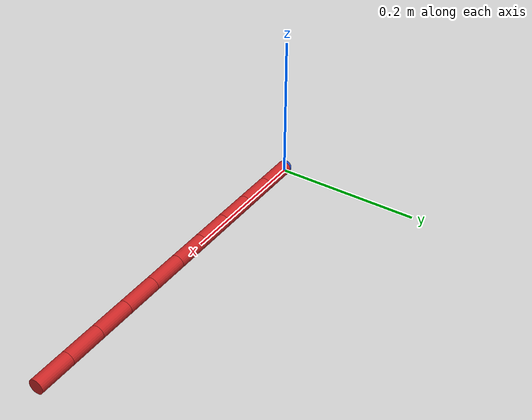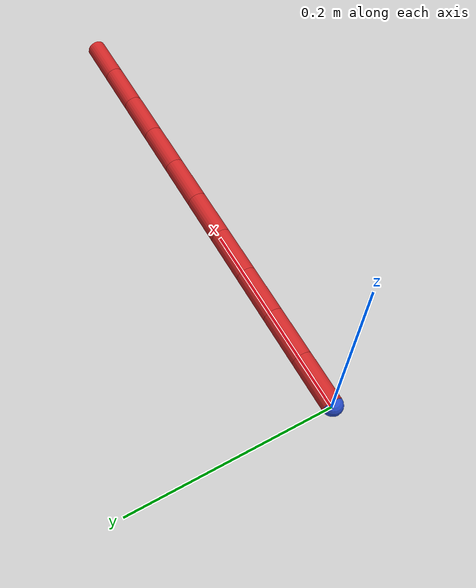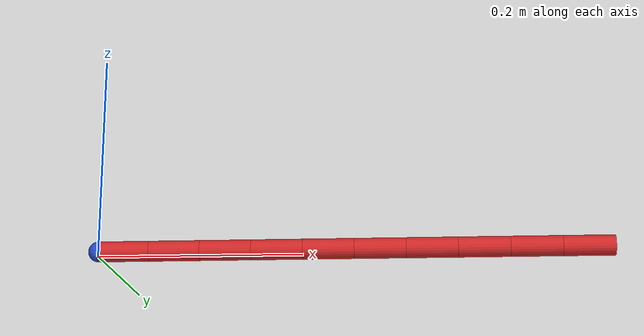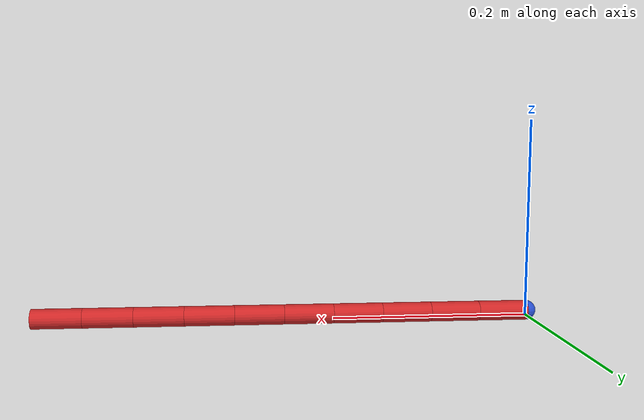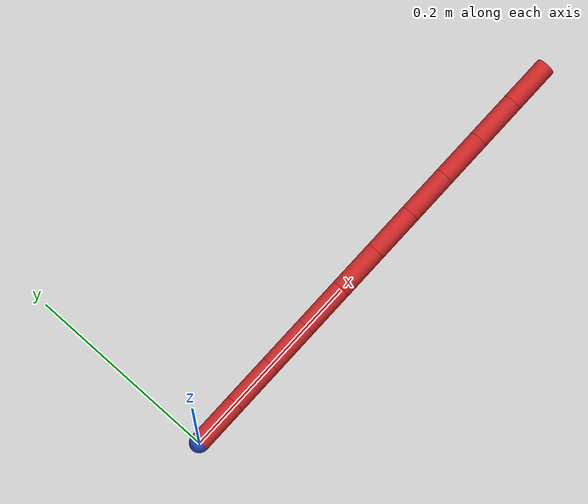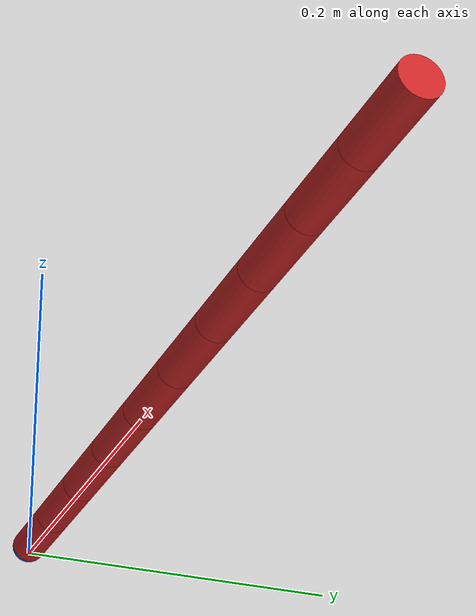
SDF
<sdf version="1.6">
    <model name="dragging_rope">
        <pose frame="">0 0 0.005 0 0 0</pose>

        <link name="rope_link_1">
        <pose frame="">0.025 0 0 3.14159 -1.57079 3.14159</pose>
        <inertial>
            <pose frame="">0 0 0 0 0 0</pose>
            <mass>0.01</mass>
            <inertia>
                <ixx>2.3333333333333336e-06</ixx>
                <ixy>0</ixy>
                <ixz>0</ixz>
                <iyy>2.3333333333333336e-06</iyy>
                <iyz>0</iyz>
                <izz>5.000000000000001e-07</izz>
            </inertia>
        </inertial>
        <collision name="link_1_collision">
            <pose frame="">0 0 0 0 0 0</pose>
            <geometry>
                <box>
                    <size>0.02 0.02 0.045000000000000005</size>
                </box>
            </geometry>
            <surface>
                <friction>
                    <ode>
                        <mu>0.10</mu>
                        <mu2>0.10</mu2>
                    </ode>
                </friction>
                <contact>
                    <ode>
                        <kp>1e15</kp>
                        <kd>1e13</kd>
                    </ode>
                </contact>
            </surface>
        </collision>

        <visual name="link_1_visual">
            <cast_shadows>0</cast_shadows>
            <pose frame="">0 0 0 0 0 0</pose>
            <geometry>
                <cylinder>
                    <length>0.05</length>
                    <radius>0.01</radius>
                </cylinder>
            </geometry>
            <material>
                <script>
                    <name>Gazebo/Red</name>
                    <uri>file://media/materials/scripts/gazebo.material</uri>
                </script>
            </material>
        </visual>
        <self_collide>1</self_collide>
        </link>

        <link name="rope_link_2">
        <pose frame="">0.07500000000000001 0 0 3.14159 -1.57079 3.14159</pose>
        <inertial>
            <pose frame="">0 0 0 0 0 0</pose>
            <mass>0.01</mass>
            <inertia>
                <ixx>2.3333333333333336e-06</ixx>
                <ixy>0</ixy>
                <ixz>0</ixz>
                <iyy>2.3333333333333336e-06</iyy>
                <iyz>0</iyz>
                <izz>5.000000000000001e-07</izz>
            </inertia>
        </inertial>
        <collision name="link_2_collision">
            <pose frame="">0 0 0 0 0 0</pose>
            <geometry>
                <box>
                    <size>0.02 0.02 0.045000000000000005</size>
                </box>
            </geometry>
            <surface>
                <friction>
                    <ode>
                        <mu>0.10</mu>
                        <mu2>0.10</mu2>
                    </ode>
                </friction>
                <contact>
                    <ode>
                        <kp>1e15</kp>
                        <kd>1e13</kd>
                    </ode>
                </contact>
            </surface>
        </collision>

        <visual name="link_2_visual">
            <cast_shadows>0</cast_shadows>
            <pose frame="">0 0 0 0 0 0</pose>
            <geometry>
                <cylinder>
                    <length>0.05</length>
                    <radius>0.01</radius>
                </cylinder>
            </geometry>
            <material>
                <script>
                    <name>Gazebo/Red</name>
                    <uri>file://media/materials/scripts/gazebo.material</uri>
                </script>
            </material>
        </visual>
        <self_collide>1</self_collide>
        </link>

        <link name="rope_link_3">
        <pose frame="">0.125 0 0 3.14159 -1.57079 3.14159</pose>
        <inertial>
            <pose frame="">0 0 0 0 0 0</pose>
            <mass>0.01</mass>
            <inertia>
                <ixx>2.3333333333333336e-06</ixx>
                <ixy>0</ixy>
                <ixz>0</ixz>
                <iyy>2.3333333333333336e-06</iyy>
                <iyz>0</iyz>
                <izz>5.000000000000001e-07</izz>
            </inertia>
        </inertial>
        <collision name="link_3_collision">
            <pose frame="">0 0 0 0 0 0</pose>
            <geometry>
                <box>
                    <size>0.02 0.02 0.045000000000000005</size>
                </box>
            </geometry>
            <surface>
                <friction>
                    <ode>
                        <mu>0.10</mu>
                        <mu2>0.10</mu2>
                    </ode>
                </friction>
                <contact>
                    <ode>
                        <kp>1e15</kp>
                        <kd>1e13</kd>
                    </ode>
                </contact>
            </surface>
        </collision>

        <visual name="link_3_visual">
            <cast_shadows>0</cast_shadows>
            <pose frame="">0 0 0 0 0 0</pose>
            <geometry>
                <cylinder>
                    <length>0.05</length>
                    <radius>0.01</radius>
                </cylinder>
            </geometry>
            <material>
                <script>
                    <name>Gazebo/Red</name>
                    <uri>file://media/materials/scripts/gazebo.material</uri>
                </script>
            </material>
        </visual>
        <self_collide>1</self_collide>
        </link>

        <link name="rope_link_4">
        <pose frame="">0.17500000000000002 0 0 3.14159 -1.57079 3.14159</pose>
        <inertial>
            <pose frame="">0 0 0 0 0 0</pose>
            <mass>0.01</mass>
            <inertia>
                <ixx>2.3333333333333336e-06</ixx>
                <ixy>0</ixy>
                <ixz>0</ixz>
                <iyy>2.3333333333333336e-06</iyy>
                <iyz>0</iyz>
                <izz>5.000000000000001e-07</izz>
            </inertia>
        </inertial>
        <collision name="link_4_collision">
            <pose frame="">0 0 0 0 0 0</pose>
            <geometry>
                <box>
                    <size>0.02 0.02 0.045000000000000005</size>
                </box>
            </geometry>
            <surface>
                <friction>
                    <ode>
                        <mu>0.10</mu>
                        <mu2>0.10</mu2>
                    </ode>
                </friction>
                <contact>
                    <ode>
                        <kp>1e15</kp>
                        <kd>1e13</kd>
                    </ode>
                </contact>
            </surface>
        </collision>

        <visual name="link_4_visual">
            <cast_shadows>0</cast_shadows>
            <pose frame="">0 0 0 0 0 0</pose>
            <geometry>
                <cylinder>
                    <length>0.05</length>
                    <radius>0.01</radius>
                </cylinder>
            </geometry>
            <material>
                <script>
                    <name>Gazebo/Red</name>
                    <uri>file://media/materials/scripts/gazebo.material</uri>
                </script>
            </material>
        </visual>
        <self_collide>1</self_collide>
        </link>

        <link name="rope_link_5">
        <pose frame="">0.225 0 0 3.14159 -1.57079 3.14159</pose>
        <inertial>
            <pose frame="">0 0 0 0 0 0</pose>
            <mass>0.01</mass>
            <inertia>
                <ixx>2.3333333333333336e-06</ixx>
                <ixy>0</ixy>
                <ixz>0</ixz>
                <iyy>2.3333333333333336e-06</iyy>
                <iyz>0</iyz>
                <izz>5.000000000000001e-07</izz>
            </inertia>
        </inertial>
        <collision name="link_5_collision">
            <pose frame="">0 0 0 0 0 0</pose>
            <geometry>
                <box>
                    <size>0.02 0.02 0.045000000000000005</size>
                </box>
            </geometry>
            <surface>
                <friction>
                    <ode>
                        <mu>0.10</mu>
                        <mu2>0.10</mu2>
                    </ode>
                </friction>
                <contact>
                    <ode>
                        <kp>1e15</kp>
                        <kd>1e13</kd>
                    </ode>
                </contact>
            </surface>
        </collision>

        <visual name="link_5_visual">
            <cast_shadows>0</cast_shadows>
            <pose frame="">0 0 0 0 0 0</pose>
            <geometry>
                <cylinder>
                    <length>0.05</length>
                    <radius>0.01</radius>
                </cylinder>
            </geometry>
            <material>
                <script>
                    <name>Gazebo/Red</name>
                    <uri>file://media/materials/scripts/gazebo.material</uri>
                </script>
            </material>
        </visual>
        <self_collide>1</self_collide>
        </link>

        <link name="rope_link_6">
        <pose frame="">0.275 0 0 3.14159 -1.57079 3.14159</pose>
        <inertial>
            <pose frame="">0 0 0 0 0 0</pose>
            <mass>0.01</mass>
            <inertia>
                <ixx>2.3333333333333336e-06</ixx>
                <ixy>0</ixy>
                <ixz>0</ixz>
                <iyy>2.3333333333333336e-06</iyy>
                <iyz>0</iyz>
                <izz>5.000000000000001e-07</izz>
            </inertia>
        </inertial>
        <collision name="link_6_collision">
            <pose frame="">0 0 0 0 0 0</pose>
            <geometry>
                <box>
                    <size>0.02 0.02 0.045000000000000005</size>
                </box>
            </geometry>
            <surface>
                <friction>
                    <ode>
                        <mu>0.10</mu>
                        <mu2>0.10</mu2>
                    </ode>
                </friction>
                <contact>
                    <ode>
                        <kp>1e15</kp>
                        <kd>1e13</kd>
                    </ode>
                </contact>
            </surface>
        </collision>

        <visual name="link_6_visual">
            <cast_shadows>0</cast_shadows>
            <pose frame="">0 0 0 0 0 0</pose>
            <geometry>
                <cylinder>
                    <length>0.05</length>
                    <radius>0.01</radius>
                </cylinder>
            </geometry>
            <material>
                <script>
                    <name>Gazebo/Red</name>
                    <uri>file://media/materials/scripts/gazebo.material</uri>
                </script>
            </material>
        </visual>
        <self_collide>1</self_collide>
        </link>

        <link name="rope_link_7">
        <pose frame="">0.32500000000000007 0 0 3.14159 -1.57079 3.14159</pose>
        <inertial>
            <pose frame="">0 0 0 0 0 0</pose>
            <mass>0.01</mass>
            <inertia>
                <ixx>2.3333333333333336e-06</ixx>
                <ixy>0</ixy>
                <ixz>0</ixz>
                <iyy>2.3333333333333336e-06</iyy>
                <iyz>0</iyz>
                <izz>5.000000000000001e-07</izz>
            </inertia>
        </inertial>
        <collision name="link_7_collision">
            <pose frame="">0 0 0 0 0 0</pose>
            <geometry>
                <box>
                    <size>0.02 0.02 0.045000000000000005</size>
                </box>
            </geometry>
            <surface>
                <friction>
                    <ode>
                        <mu>0.10</mu>
                        <mu2>0.10</mu2>
                    </ode>
                </friction>
                <contact>
                    <ode>
                        <kp>1e15</kp>
                        <kd>1e13</kd>
                    </ode>
                </contact>
            </surface>
        </collision>

        <visual name="link_7_visual">
            <cast_shadows>0</cast_shadows>
            <pose frame="">0 0 0 0 0 0</pose>
            <geometry>
                <cylinder>
                    <length>0.05</length>
                    <radius>0.01</radius>
                </cylinder>
            </geometry>
            <material>
                <script>
                    <name>Gazebo/Red</name>
                    <uri>file://media/materials/scripts/gazebo.material</uri>
                </script>
            </material>
        </visual>
        <self_collide>1</self_collide>
        </link>

        <link name="rope_link_8">
        <pose frame="">0.37500000000000006 0 0 3.14159 -1.57079 3.14159</pose>
        <inertial>
            <pose frame="">0 0 0 0 0 0</pose>
            <mass>0.01</mass>
            <inertia>
                <ixx>2.3333333333333336e-06</ixx>
                <ixy>0</ixy>
                <ixz>0</ixz>
                <iyy>2.3333333333333336e-06</iyy>
                <iyz>0</iyz>
                <izz>5.000000000000001e-07</izz>
            </inertia>
        </inertial>
        <collision name="link_8_collision">
            <pose frame="">0 0 0 0 0 0</pose>
            <geometry>
                <box>
                    <size>0.02 0.02 0.045000000000000005</size>
                </box>
            </geometry>
            <surface>
                <friction>
                    <ode>
                        <mu>0.10</mu>
                        <mu2>0.10</mu2>
                    </ode>
                </friction>
                <contact>
                    <ode>
                        <kp>1e15</kp>
                        <kd>1e13</kd>
                    </ode>
                </contact>
            </surface>
        </collision>

        <visual name="link_8_visual">
            <cast_shadows>0</cast_shadows>
            <pose frame="">0 0 0 0 0 0</pose>
            <geometry>
                <cylinder>
                    <length>0.05</length>
                    <radius>0.01</radius>
                </cylinder>
            </geometry>
            <material>
                <script>
                    <name>Gazebo/Red</name>
                    <uri>file://media/materials/scripts/gazebo.material</uri>
                </script>
            </material>
        </visual>
        <self_collide>1</self_collide>
        </link>

        <link name="rope_link_9">
        <pose frame="">0.42500000000000004 0 0 3.14159 -1.57079 3.14159</pose>
        <inertial>
            <pose frame="">0 0 0 0 0 0</pose>
            <mass>0.01</mass>
            <inertia>
                <ixx>2.3333333333333336e-06</ixx>
                <ixy>0</ixy>
                <ixz>0</ixz>
                <iyy>2.3333333333333336e-06</iyy>
                <iyz>0</iyz>
                <izz>5.000000000000001e-07</izz>
            </inertia>
        </inertial>
        <collision name="link_9_collision">
            <pose frame="">0 0 0 0 0 0</pose>
            <geometry>
                <box>
                    <size>0.02 0.02 0.045000000000000005</size>
                </box>
            </geometry>
            <surface>
                <friction>
                    <ode>
                        <mu>0.10</mu>
                        <mu2>0.10</mu2>
                    </ode>
                </friction>
                <contact>
                    <ode>
                        <kp>1e15</kp>
                        <kd>1e13</kd>
                    </ode>
                </contact>
            </surface>
        </collision>

        <visual name="link_9_visual">
            <cast_shadows>0</cast_shadows>
            <pose frame="">0 0 0 0 0 0</pose>
            <geometry>
                <cylinder>
                    <length>0.05</length>
                    <radius>0.01</radius>
                </cylinder>
            </geometry>
            <material>
                <script>
                    <name>Gazebo/Red</name>
                    <uri>file://media/materials/scripts/gazebo.material</uri>
                </script>
            </material>
        </visual>
        <self_collide>1</self_collide>
        </link>

        <link name="rope_link_10">
        <pose frame="">0.47500000000000003 0 0 3.14159 -1.57079 3.14159</pose>
        <inertial>
            <pose frame="">0 0 0 0 0 0</pose>
            <mass>0.01</mass>
            <inertia>
                <ixx>2.3333333333333336e-06</ixx>
                <ixy>0</ixy>
                <ixz>0</ixz>
                <iyy>2.3333333333333336e-06</iyy>
                <iyz>0</iyz>
                <izz>5.000000000000001e-07</izz>
            </inertia>
        </inertial>
        <collision name="link_10_collision">
            <pose frame="">0 0 0 0 0 0</pose>
            <geometry>
                <box>
                    <size>0.02 0.02 0.045000000000000005</size>
                </box>
            </geometry>
            <surface>
                <friction>
                    <ode>
                        <mu>0.10</mu>
                        <mu2>0.10</mu2>
                    </ode>
                </friction>
                <contact>
                    <ode>
                        <kp>1e15</kp>
                        <kd>1e13</kd>
                    </ode>
                </contact>
            </surface>
        </collision>

        <visual name="link_10_visual">
            <cast_shadows>0</cast_shadows>
            <pose frame="">0 0 0 0 0 0</pose>
            <geometry>
                <cylinder>
                    <length>0.05</length>
                    <radius>0.01</radius>
                </cylinder>
            </geometry>
            <material>
                <script>
                    <name>Gazebo/Red</name>
                    <uri>file://media/materials/scripts/gazebo.material</uri>
                </script>
            </material>
        </visual>
        <self_collide>1</self_collide>
        </link>

        <joint name="joint_1" type="revolute2">
            <parent>rope_link_2</parent>
            <child>rope_link_1</child>
            <pose>0 0 -0.025 0 0 0</pose>
            <axis>
                <xyz>1 0 0</xyz>
                <limit>
                    <lower>-1.0</lower>
                    <upper>1.0</upper>
                    <effort>10</effort>
                    <velocity>5</velocity>
                </limit>
                <dynamics>
                    <damping>0.0</damping>
                    <friction>0</friction>
                </dynamics>
            </axis>
            <axis2>
                <xyz>0 1 0</xyz>
                <limit>
                    <lower>-1.0</lower>
                    <upper>1.0</upper>
                    <effort>10</effort>
                    <velocity>5</velocity>
                </limit>
                <dynamics>
                    <damping>0.0</damping>
                    <friction>0</friction>
                </dynamics>
            </axis2>
            <physics>
                <ode>
                    <cfm>0.0001</cfm>
                    <implicit_spring_damper>1</implicit_spring_damper>
                </ode>
            </physics>
        </joint>

        <joint name="joint_2" type="revolute2">
            <parent>rope_link_3</parent>
            <child>rope_link_2</child>
            <pose>0 0 -0.025 0 0 0</pose>
            <axis>
                <xyz>1 0 0</xyz>
                <limit>
                    <lower>-1.0</lower>
                    <upper>1.0</upper>
                    <effort>10</effort>
                    <velocity>5</velocity>
                </limit>
                <dynamics>
                    <damping>0.0</damping>
                    <friction>0</friction>
                </dynamics>
            </axis>
            <axis2>
                <xyz>0 1 0</xyz>
                <limit>
                    <lower>-1.0</lower>
                    <upper>1.0</upper>
                    <effort>10</effort>
                    <velocity>5</velocity>
                </limit>
                <dynamics>
                    <damping>0.0</damping>
                    <friction>0</friction>
                </dynamics>
            </axis2>
            <physics>
                <ode>
                    <cfm>0.0001</cfm>
                    <implicit_spring_damper>1</implicit_spring_damper>
                </ode>
            </physics>
        </joint>

        <joint name="joint_3" type="revolute2">
            <parent>rope_link_4</parent>
            <child>rope_link_3</child>
            <pose>0 0 -0.025 0 0 0</pose>
            <axis>
                <xyz>1 0 0</xyz>
                <limit>
                    <lower>-1.0</lower>
                    <upper>1.0</upper>
                    <effort>10</effort>
                    <velocity>5</velocity>
                </limit>
                <dynamics>
                    <damping>0.0</damping>
                    <friction>0</friction>
                </dynamics>
            </axis>
            <axis2>
                <xyz>0 1 0</xyz>
                <limit>
                    <lower>-1.0</lower>
                    <upper>1.0</upper>
                    <effort>10</effort>
                    <velocity>5</velocity>
                </limit>
                <dynamics>
                    <damping>0.0</damping>
                    <friction>0</friction>
                </dynamics>
            </axis2>
            <physics>
                <ode>
                    <cfm>0.0001</cfm>
                    <implicit_spring_damper>1</implicit_spring_damper>
                </ode>
            </physics>
        </joint>

        <joint name="joint_4" type="revolute2">
            <parent>rope_link_5</parent>
            <child>rope_link_4</child>
            <pose>0 0 -0.025 0 0 0</pose>
            <axis>
                <xyz>1 0 0</xyz>
                <limit>
                    <lower>-1.0</lower>
                    <upper>1.0</upper>
                    <effort>10</effort>
                    <velocity>5</velocity>
                </limit>
                <dynamics>
                    <damping>0.0</damping>
                    <friction>0</friction>
                </dynamics>
            </axis>
            <axis2>
                <xyz>0 1 0</xyz>
                <limit>
                    <lower>-1.0</lower>
                    <upper>1.0</upper>
                    <effort>10</effort>
                    <velocity>5</velocity>
                </limit>
                <dynamics>
                    <damping>0.0</damping>
                    <friction>0</friction>
                </dynamics>
            </axis2>
            <physics>
                <ode>
                    <cfm>0.0001</cfm>
                    <implicit_spring_damper>1</implicit_spring_damper>
                </ode>
            </physics>
        </joint>

        <joint name="joint_5" type="revolute2">
            <parent>rope_link_6</parent>
            <child>rope_link_5</child>
            <pose>0 0 -0.025 0 0 0</pose>
            <axis>
                <xyz>1 0 0</xyz>
                <limit>
                    <lower>-1.0</lower>
                    <upper>1.0</upper>
                    <effort>10</effort>
                    <velocity>5</velocity>
                </limit>
                <dynamics>
                    <damping>0.0</damping>
                    <friction>0</friction>
                </dynamics>
            </axis>
            <axis2>
                <xyz>0 1 0</xyz>
                <limit>
                    <lower>-1.0</lower>
                    <upper>1.0</upper>
                    <effort>10</effort>
                    <velocity>5</velocity>
                </limit>
                <dynamics>
                    <damping>0.0</damping>
                    <friction>0</friction>
                </dynamics>
            </axis2>
            <physics>
                <ode>
                    <cfm>0.0001</cfm>
                    <implicit_spring_damper>1</implicit_spring_damper>
                </ode>
            </physics>
        </joint>

        <joint name="joint_6" type="revolute2">
            <parent>rope_link_7</parent>
            <child>rope_link_6</child>
            <pose>0 0 -0.025 0 0 0</pose>
            <axis>
                <xyz>1 0 0</xyz>
                <limit>
                    <lower>-1.0</lower>
                    <upper>1.0</upper>
                    <effort>10</effort>
                    <velocity>5</velocity>
                </limit>
                <dynamics>
                    <damping>0.0</damping>
                    <friction>0</friction>
                </dynamics>
            </axis>
            <axis2>
                <xyz>0 1 0</xyz>
                <limit>
                    <lower>-1.0</lower>
                    <upper>1.0</upper>
                    <effort>10</effort>
                    <velocity>5</velocity>
                </limit>
                <dynamics>
                    <damping>0.0</damping>
                    <friction>0</friction>
                </dynamics>
            </axis2>
            <physics>
                <ode>
                    <cfm>0.0001</cfm>
                    <implicit_spring_damper>1</implicit_spring_damper>
                </ode>
            </physics>
        </joint>

        <joint name="joint_7" type="revolute2">
            <parent>rope_link_8</parent>
            <child>rope_link_7</child>
            <pose>0 0 -0.025 0 0 0</pose>
            <axis>
                <xyz>1 0 0</xyz>
                <limit>
                    <lower>-1.0</lower>
                    <upper>1.0</upper>
                    <effort>10</effort>
                    <velocity>5</velocity>
                </limit>
                <dynamics>
                    <damping>0.0</damping>
                    <friction>0</friction>
                </dynamics>
            </axis>
            <axis2>
                <xyz>0 1 0</xyz>
                <limit>
                    <lower>-1.0</lower>
                    <upper>1.0</upper>
                    <effort>10</effort>
                    <velocity>5</velocity>
                </limit>
                <dynamics>
                    <damping>0.0</damping>
                    <friction>0</friction>
                </dynamics>
            </axis2>
            <physics>
                <ode>
                    <cfm>0.0001</cfm>
                    <implicit_spring_damper>1</implicit_spring_damper>
                </ode>
            </physics>
        </joint>

        <joint name="joint_8" type="revolute2">
            <parent>rope_link_9</parent>
            <child>rope_link_8</child>
            <pose>0 0 -0.025 0 0 0</pose>
            <axis>
                <xyz>1 0 0</xyz>
                <limit>
                    <lower>-1.0</lower>
                    <upper>1.0</upper>
                    <effort>10</effort>
                    <velocity>5</velocity>
                </limit>
                <dynamics>
                    <damping>0.0</damping>
                    <friction>0</friction>
                </dynamics>
            </axis>
            <axis2>
                <xyz>0 1 0</xyz>
                <limit>
                    <lower>-1.0</lower>
                    <upper>1.0</upper>
                    <effort>10</effort>
                    <velocity>5</velocity>
                </limit>
                <dynamics>
                    <damping>0.0</damping>
                    <friction>0</friction>
                </dynamics>
            </axis2>
            <physics>
                <ode>
                    <cfm>0.0001</cfm>
                    <implicit_spring_damper>1</implicit_spring_damper>
                </ode>
            </physics>
        </joint>

        <joint name="joint_9" type="revolute2">
            <parent>rope_link_10</parent>
            <child>rope_link_9</child>
            <pose>0 0 -0.025 0 0 0</pose>
            <axis>
                <xyz>1 0 0</xyz>
                <limit>
                    <lower>-1.0</lower>
                    <upper>1.0</upper>
                    <effort>10</effort>
                    <velocity>5</velocity>
                </limit>
                <dynamics>
                    <damping>0.0</damping>
                    <friction>0</friction>
                </dynamics>
            </axis>
            <axis2>
                <xyz>0 1 0</xyz>
                <limit>
                    <lower>-1.0</lower>
                    <upper>1.0</upper>
                    <effort>10</effort>
                    <velocity>5</velocity>
                </limit>
                <dynamics>
                    <damping>0.0</damping>
                    <friction>0</friction>
                </dynamics>
            </axis2>
            <physics>
                <ode>
                    <cfm>0.0001</cfm>
                    <implicit_spring_damper>1</implicit_spring_damper>
                </ode>
            </physics>
        </joint>

        <link name='head'>
        <pose frame=''>0 0 0 0 0 0 </pose>
        <inertial>
            <pose frame=''>0 0 0 0 0 0</pose>
            <mass>0.1</mass>
            <inertia>
                <ixx>0.0001</ixx>
                <ixy>0</ixy>
                <ixz>0</ixz>
                <iyy>0.0001</iyy>
                <iyz>0</iyz>
                <izz>0.001</izz>
            </inertia>
        </inertial>
        <collision name='head_collision'>
            <pose frame=''>0 0 0 0 0 0</pose>
            <geometry>
                <sphere>
                    <radius>0.01 </radius>
                </sphere>
            </geometry>
            <surface>
                <contact>
                    <ode>
                        <kp>1e15</kp>
                        <kd>1e13</kd>
                    </ode>
                </contact>
                <friction>
                    <ode>
                        <mu>0.10</mu>
                        <mu2>0.10</mu2>
                    </ode>
                </friction>
            </surface>
        </collision>
        <visual name='head_visual'>
            <cast_shadows>0</cast_shadows>
            <pose frame=''>0 0 0 0 0 0</pose>
            <geometry>
                <sphere>
                    <radius>0.01</radius>
                </sphere>
            </geometry>
            <material>
                <script>
                    <name>Gazebo/Blue</name>
                    <uri>file://media/materials/scripts/gazebo.material</uri>
                </script>
            </material>
        </visual>
        <self_collide>1</self_collide>
        </link>
        <joint name="head_joint" type="revolute">
            <child>head</child>
            <parent>rope_link_1</parent>
            <pose>0 0 0 0 0 0</pose>
            <axis>
                <xyz>0 0 1</xyz>
                <dynamics>
                    <damping>0.0</damping>
                    <friction>0.0</friction>
                </dynamics>
            </axis>
            <physics>
                <ode>
                    <cfm>0.0005</cfm>
                    <implicit_spring_damper>1</implicit_spring_damper>
                </ode>
            </physics>
        </joint>
        <plugin name='rope_plugin' filename='librope_plugin.so'>
            <num_links>10</num_links>
            <overstretching_factor>1.3</overstretching_factor>
        </plugin>
        <plugin name='position_3d_plugin' filename='libposition_3d_plugin.so'>
            <object_name>gripper</object_name>
            <gravity_compensation>true</gravity_compensation>
            <kP_pos>5</kP_pos>
            <kD_pos>0.0</kD_pos>
            <kP_vel>200.0</kP_vel>
            <kI_vel>0.05</kI_vel>
            <kD_vel>0.0</kD_vel>
            <max_force>2.0</max_force>
            <max_vel>0.15</max_vel>
            <kP_rot>0.0</kP_rot>
            <kI_rot>0.0</kI_rot>
            <kD_rot>0.0</kD_rot>
            <kP_rot_vel>0.0</kP_rot_vel>
            <kI_rot_vel>0.0</kI_rot_vel>
            <kD_rot_vel>0.0</kD_rot_vel>
            <max_torque>0.0</max_torque>
            <max_rot_vel>0.0</max_rot_vel>
            <link>head</link>
        </plugin>
    </model>
</sdf>
